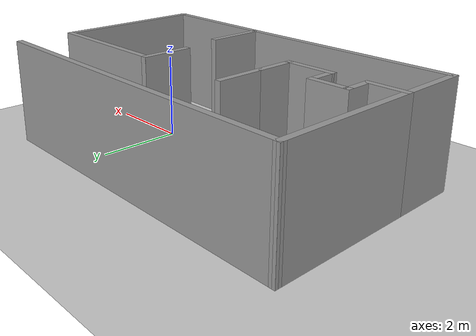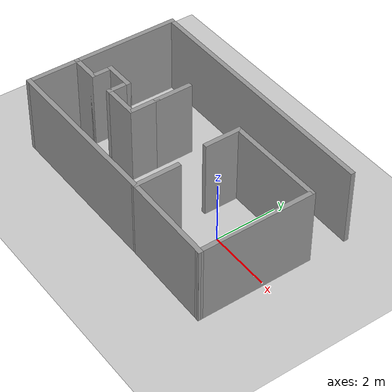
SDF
<sdf version="1.7">
 <world name="default">
  <light name="sun" type="directional">
   <pose>0 0 10 0 -0 0</pose>
   <diffuse>0.8 0.8 0.8 1</diffuse>
   <specular>0.2 0.2 0.2 1</specular>
   <attenuation>
    <range>1000</range>
    <constant>0.9</constant>
    <linear>0.01</linear>
    <quadratic>0.001</quadratic>
   </attenuation>
   <direction>-0.5 0.1 -0.9</direction>
   <spot><inner_angle>0</inner_angle><outer_angle>0</outer_angle><falloff>0</falloff></spot>
  </light>
  <model name="ground_plane">
   <static>1</static>
   <link name="link">
    <collision name="collision">
     <geometry><plane><normal>0 0 1</normal><size>100 100</size></plane></geometry>
     <surface><friction><ode><mu>100</mu><mu2>50</mu2></ode></friction></surface>
    </collision>
    <visual name="visual">
     <cast_shadows>0</cast_shadows>
     <geometry><plane><normal>0 0 1</normal><size>100 100</size></plane></geometry>
     <material>
      <script><uri>file://media/materials/scripts/gazebo.material</uri><name>Gazebo/Grey</name></script>
     </material>
    </visual>
   </link>
  </model>
  <gravity>0 0 -9.8</gravity>
  <magnetic_field>6e-06 2.3e-05 -4.2e-05</magnetic_field>
  <atmosphere type="adiabatic"/>
  <physics type="ode">
   <max_step_size>0.001</max_step_size>
   <real_time_factor>1</real_time_factor>
   <real_time_update_rate>1000</real_time_update_rate>
  </physics>
  <scene><ambient>0.4 0.4 0.4 1</ambient><background>0.7 0.7 0.7 1</background><shadows>1</shadows></scene>
  <audio><device>default</device></audio>
  <spherical_coordinates>
   <surface_model>EARTH_WGS84</surface_model>
   <latitude_deg>0</latitude_deg>
   <longitude_deg>0</longitude_deg>
   <elevation>0</elevation>
   <heading_deg>0</heading_deg>
  </spherical_coordinates>
  <model name="home">
   <pose>-2.30107 -0.913561 0 0 -0 0</pose>
   <link name="Wall_11">
    <collision name="Wall_11_Collision">
     <geometry><box><size>3.5 0.15 2.5</size></box></geometry>
     <pose>0 0 1.25 0 -0 0</pose>
    </collision>
    <visual name="Wall_11_Visual">
     <pose>0 0 1.25 0 -0 0</pose>
     <geometry><box><size>3.5 0.15 2.5</size></box></geometry>
     <material>
      <script><uri>file://media/materials/scripts/gazebo.material</uri><name>Gazebo/Grey</name></script>
      <ambient>1 1 1 1</ambient>
     </material>
     <meta><layer>0</layer></meta>
    </visual>
    <pose>-3.92726 2.14306 0 0 -0 -1.5708</pose>
   </link>
   <link name="Wall_12">
    <collision name="Wall_12_Collision">
     <geometry><box><size>1 0.15 2.5</size></box></geometry>
     <pose>0 0 1.25 0 -0 0</pose>
    </collision>
    <visual name="Wall_12_Visual">
     <pose>0 0 1.25 0 -0 0</pose>
     <geometry><box><size>1 0.15 2.5</size></box></geometry>
     <material>
      <script><uri>file://media/materials/scripts/gazebo.material</uri><name>Gazebo/Grey</name></script>
      <ambient>1 1 1 1</ambient>
     </material>
     <meta><layer>0</layer></meta>
    </visual>
    <pose>-3.50226 0.468056 0 0 -0 0</pose>
   </link>
   <link name="Wall_13">
    <collision name="Wall_13_Collision">
     <geometry><box><size>0.75 0.15 2.5</size></box></geometry>
     <pose>0 0 1.25 0 -0 0</pose>
    </collision>
    <visual name="Wall_13_Visual">
     <pose>0 0 1.25 0 -0 0</pose>
     <geometry><box><size>0.75 0.15 2.5</size></box></geometry>
     <material>
      <script><uri>file://media/materials/scripts/gazebo.material</uri><name>Gazebo/Grey</name></script>
      <ambient>1 1 1 1</ambient>
     </material>
     <meta><layer>0</layer></meta>
    </visual>
    <pose>-3.07726 0.768056 0 0 -0 1.5708</pose>
   </link>
   <link name="Wall_14">
    <collision name="Wall_14_Collision">
     <geometry><box><size>1 0.15 2.5</size></box></geometry>
     <pose>0 0 1.25 0 -0 0</pose>
    </collision>
    <visual name="Wall_14_Visual">
     <pose>0 0 1.25 0 -0 0</pose>
     <geometry><box><size>1 0.15 2.5</size></box></geometry>
     <material>
      <script><uri>file://media/materials/scripts/gazebo.material</uri><name>Gazebo/Grey</name></script>
      <ambient>1 1 1 1</ambient>
     </material>
     <meta><layer>0</layer></meta>
    </visual>
    <pose>-2.65226 1.06806 0 0 -0 0</pose>
   </link>
   <link name="Wall_15">
    <collision name="Wall_15_Collision">
     <geometry><box><size>0.75 0.15 2.5</size></box></geometry>
     <pose>0 0 1.25 0 -0 0</pose>
    </collision>
    <visual name="Wall_15_Visual">
     <pose>0 0 1.25 0 -0 0</pose>
     <geometry><box><size>0.75 0.15 2.5</size></box></geometry>
     <material>
      <script><uri>file://media/materials/scripts/gazebo.material</uri><name>Gazebo/Grey</name></script>
      <ambient>1 1 1 1</ambient>
     </material>
     <meta><layer>0</layer></meta>
    </visual>
    <pose>-2.22726 0.768056 0 0 -0 -1.5708</pose>
   </link>
   <link name="Wall_16">
    <collision name="Wall_16_Collision">
     <geometry><box><size>1.25 0.15 2.5</size></box></geometry>
     <pose>0 0 1.25 0 -0 0</pose>
    </collision>
    <visual name="Wall_16_Visual">
     <pose>0 0 1.25 0 -0 0</pose>
     <geometry><box><size>1.25 0.15 2.5</size></box></geometry>
     <material>
      <script><uri>file://media/materials/scripts/gazebo.material</uri><name>Gazebo/Grey</name></script>
      <ambient>1 1 1 1</ambient>
     </material>
     <meta><layer>0</layer></meta>
    </visual>
    <pose>-1.67726 0.468056 0 0 -0 0</pose>
   </link>
   <link name="Wall_17">
    <collision name="Wall_17_Collision">
     <geometry><box><size>1 0.15 2.5</size></box></geometry>
     <pose>0 0 1.25 0 -0 0</pose>
    </collision>
    <visual name="Wall_17_Visual">
     <pose>0 0 1.25 0 -0 0</pose>
     <geometry><box><size>1 0.15 2.5</size></box></geometry>
     <material>
      <script><uri>file://media/materials/scripts/gazebo.material</uri><name>Gazebo/Grey</name></script>
      <ambient>1 1 1 1</ambient>
     </material>
     <meta><layer>0</layer></meta>
    </visual>
    <pose>-1.12726 0.893056 0 0 -0 1.5708</pose>
   </link>
   <link name="Wall_19">
    <collision name="Wall_19_Collision">
     <geometry><box><size>1.25 0.15 2.5</size></box></geometry>
     <pose>0 0 1.25 0 -0 0</pose>
    </collision>
    <visual name="Wall_19_Visual">
     <pose>0 0 1.25 0 -0 0</pose>
     <geometry><box><size>1.25 0.15 2.5</size></box></geometry>
     <material>
      <script><uri>file://media/materials/scripts/gazebo.material</uri><name>Gazebo/Grey</name></script>
      <ambient>1 1 1 1</ambient>
     </material>
     <meta><layer>0</layer></meta>
    </visual>
    <pose>1.22274 1.86806 0 0 -0 1.5708</pose>
   </link>
   <link name="Wall_20">
    <collision name="Wall_20_Collision">
     <geometry><box><size>3.25 0.15 2.5</size></box></geometry>
     <pose>0 0 1.25 0 -0 0</pose>
    </collision>
    <visual name="Wall_20_Visual">
     <pose>0 0 1.25 0 -0 0</pose>
     <geometry><box><size>3.25 0.15 2.5</size></box></geometry>
     <material>
      <script><uri>file://media/materials/scripts/gazebo.material</uri><name>Gazebo/Grey</name></script>
      <ambient>1 1 1 1</ambient>
     </material>
     <meta><layer>0</layer></meta>
    </visual>
    <pose>2.77274 2.41806 0 0 -0 0</pose>
   </link>
   <link name="Wall_22">
    <collision name="Wall_22_Collision">
     <geometry><box><size>8.40015 0.15 2.5</size></box></geometry>
     <pose>0 0 1.25 0 -0 0</pose>
    </collision>
    <visual name="Wall_22_Visual">
     <pose>0 0 1.25 0 -0 0</pose>
     <geometry><box><size>8.40015 0.15 2.5</size></box></geometry>
     <material>
      <script><uri>file://media/materials/scripts/gazebo.material</uri><name>Gazebo/Grey</name></script>
      <ambient>1 1 1 1</ambient>
     </material>
     <meta><layer>0</layer></meta>
    </visual>
    <pose>0.197736 3.79306 0 0 -0 3.13553</pose>
   </link>
   <link name="Wall_24">
    <collision name="Wall_24_Collision">
     <geometry><box><size>1.75 0.15 2.5</size></box></geometry>
     <pose>0 0 1.25 0 -0 0</pose>
    </collision>
    <visual name="Wall_24_Visual">
     <pose>0 0 1.25 0 -0 0</pose>
     <geometry><box><size>1.75 0.15 2.5</size></box></geometry>
     <material>
      <script><uri>file://media/materials/scripts/gazebo.material</uri><name>Gazebo/Grey</name></script>
      <ambient>1 1 1 1</ambient>
     </material>
     <meta><layer>0</layer></meta>
    </visual>
    <pose>-3.92726 -0.331944 0 0 -0 -1.5708</pose>
   </link>
   <link name="Wall_25">
    <collision name="Wall_25_Collision">
     <geometry><box><size>5.5 0.15 2.5</size></box></geometry>
     <pose>0 0 1.25 0 -0 0</pose>
    </collision>
    <visual name="Wall_25_Visual">
     <pose>0 0 1.25 0 -0 0</pose>
     <geometry><box><size>5.5 0.15 2.5</size></box></geometry>
     <material>
      <script><uri>file://media/materials/scripts/gazebo.material</uri><name>Gazebo/Grey</name></script>
      <ambient>1 1 1 1</ambient>
     </material>
     <meta><layer>0</layer></meta>
    </visual>
    <pose>-1.25226 -1.13194 0 0 -0 0</pose>
   </link>
   <link name="Wall_26">
    <collision name="Wall_26_Collision">
     <geometry><box><size>1.5 0.15 2.5</size></box></geometry>
     <pose>0 0 1.25 0 -0 0</pose>
    </collision>
    <visual name="Wall_26_Visual">
     <pose>0 0 1.25 0 -0 0</pose>
     <geometry><box><size>1.5 0.15 2.5</size></box></geometry>
     <material>
      <script><uri>file://media/materials/scripts/gazebo.material</uri><name>Gazebo/Grey</name></script>
      <ambient>1 1 1 1</ambient>
     </material>
     <meta><layer>0</layer></meta>
    </visual>
    <pose>1.42274 -0.456944 0 0 -0 1.5708</pose>
   </link>
   <link name="Wall_28">
    <collision name="Wall_28_Collision">
     <geometry><box><size>3.75 0.15 2.5</size></box></geometry>
     <pose>0 0 1.25 0 -0 0</pose>
    </collision>
    <visual name="Wall_28_Visual">
     <pose>0 0 1.25 0 -0 0</pose>
     <geometry><box><size>3.75 0.15 2.5</size></box></geometry>
     <material>
      <script><uri>file://media/materials/scripts/gazebo.material</uri><name>Gazebo/Grey</name></script>
      <ambient>1 1 1 1</ambient>
     </material>
     <meta><layer>0</layer></meta>
    </visual>
    <pose>4.32274 0.618056 0 0 -0 -1.5708</pose>
   </link>
   <link name="Wall_29">
    <collision name="Wall_29_Collision">
     <geometry><box><size>3.05043 0.15 2.5</size></box></geometry>
     <pose>0 0 1.25 0 -0 0</pose>
    </collision>
    <visual name="Wall_29_Visual">
     <pose>0 0 1.25 0 -0 0</pose>
     <geometry><box><size>3.05043 0.15 2.5</size></box></geometry>
     <material>
      <script><uri>file://media/materials/scripts/gazebo.material</uri><name>Gazebo/Grey</name></script>
      <ambient>1 1 1 1</ambient>
     </material>
     <meta><layer>0</layer></meta>
    </visual>
    <pose>2.87274 -1.15694 0 0 -0 3.12435</pose>
   </link>
   <link name="Wall_31">
    <collision name="Wall_31_Collision">
     <geometry><box><size>1.25 0.15 2.5</size></box></geometry>
     <pose>0 0 1.25 0 -0 0</pose>
    </collision>
    <visual name="Wall_31_Visual">
     <pose>0 0 1.25 0 -0 0</pose>
     <geometry><box><size>1.25 0.15 2.5</size></box></geometry>
     <material>
      <script><uri>file://media/materials/scripts/gazebo.material</uri><name>Gazebo/Grey</name></script>
      <ambient>1 1 1 1</ambient>
     </material>
     <meta><layer>0</layer></meta>
    </visual>
    <pose>-1.12726 1.86806 0 0 -0 1.5708</pose>
   </link>
   <static>1</static>
  </model>
 </world>
</sdf>
